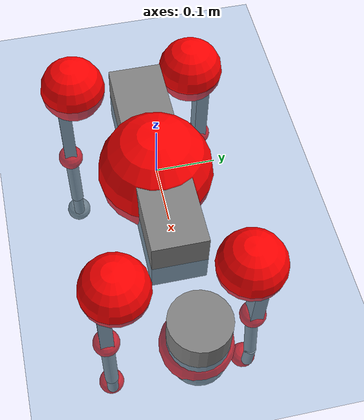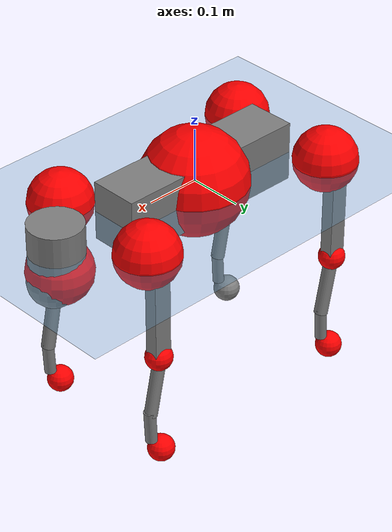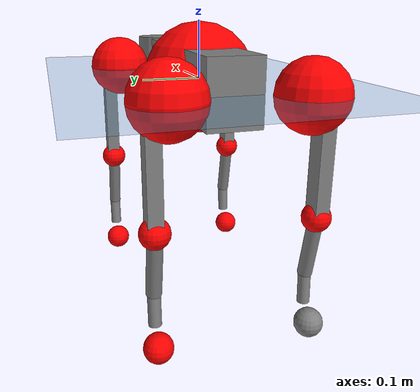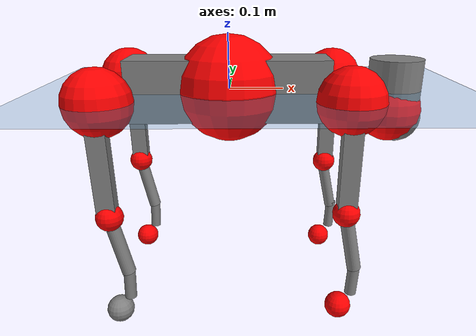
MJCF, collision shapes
<mujoco model="go2">
  <compiler angle="radian" assetdir="assets" balanceinertia="true" inertiafromgeom="false"/>

  <option timestep="0.005" density="1.2" viscosity="2e-05"/>

  <size nkey="1"/>

  <visual>
    <quality shadowsize="8192"/>
    <map shadowclip="0.5"/>
  </visual>

  <default>
    <default class="/">
      <geom contype="0" conaffinity="0" group="1" solref="-1000 -80"/>
      <site size="0.01 0.005 0.005" group="5"/>
      <general forcelimited="true" biastype="affine" gainprm="20" biasprm="0 -20 -0.5"/>
      <default class="go2">
        <joint armature="0.01" damping="0.01" frictionloss="0.2"/>
        <geom condim="1" margin="0.001"/>
        <default class="visual">
          <geom type="mesh" group="2"/>
        </default>
        <default class="collision">
          <geom group="3"/>
          <default class="foot">
            <geom size="0.022 0 0" condim="6" priority="1" friction="0.8 0.02 0.01" solimp="0.015 1 0.022"/>
          </default>
        </default>
        <default class="reward_collision_sphere">
          <geom group="5" rgba="1 0 0 1"/>
        </default>
      </default>
    </default>
  </default>

  <asset>
    <texture type="skybox" colorspace="auto" name="//unnamed_texture_0" builtin="gradient" rgb1="0.95 0.95 0.95" rgb2="0.95 0.95 0.95" width="100" height="600"/>
    <texture type="2d" colorspace="auto" name="texplane" builtin="checker" rgb1="0.345 0.575 0.748" rgb2="0.345 0.575 0.748" markrgb="1 1 1" width="512" height="512"/>
    <material name="MatPlane" class="/" texture="texplane" texuniform="true" texrepeat="2 2" specular="0.9"/>
    <material name="metal" class="/" rgba="0.9 0.95 0.95 1"/>
    <material name="black" class="/" rgba="0 0 0 1"/>
    <material name="white" class="/"/>
    <material name="gray" class="/" rgba="0.671705 0.692426 0.77427 1"/>
    <mesh name="base_0" class="/" file="base_0.obj"/>
    <mesh name="base_1" class="/" file="base_1.obj"/>
    <mesh name="base_2" class="/" file="base_2.obj"/>
    <mesh name="base_3" class="/" file="base_3.obj"/>
    <mesh name="base_4" class="/" file="base_4.obj"/>
    <mesh name="hip_0" class="/" file="hip_0.obj"/>
    <mesh name="hip_1" class="/" file="hip_1.obj"/>
    <mesh name="thigh_0" class="/" file="thigh_0.obj"/>
    <mesh name="thigh_1" class="/" file="thigh_1.obj"/>
    <mesh name="thigh_mirror_0" class="/" file="thigh_mirror_0.obj"/>
    <mesh name="thigh_mirror_1" class="/" file="thigh_mirror_1.obj"/>
    <mesh name="calf_0" class="/" file="calf_0.obj"/>
    <mesh name="calf_1" class="/" file="calf_1.obj"/>
    <mesh name="calf_mirror_0" class="/" file="calf_mirror_0.obj"/>
    <mesh name="calf_mirror_1" class="/" file="calf_mirror_1.obj"/>
    <mesh name="foot" class="/" file="foot.obj"/>
  </asset>

  <worldbody>
    <geom name="floor" class="/" size="100 100 0.125" type="plane" group="0" material="MatPlane"/>
    <light name="toplight_shadow" class="/" pos="0 0 5" dir="0.0990148 0.0990148 -0.990148" type="directional" ambient="0.04 0.04 0.04" diffuse="0.55 0.55 0.55" specular="0.12 0.12 0.12"/>
    <light name="toplight_fill" class="/" pos="0 0 5" dir="0.0990148 0.0990148 -0.990148" type="directional" castshadow="false" ambient="0.04 0.04 0.04" diffuse="0.3 0.3 0.3" specular="0.08 0.08 0.08"/>
    <body name="trunk" childclass="go2" pos="0.000173588 -0.000900032 0.00104849" quat="1 0.000416806 -0.000191294 -8.49393e-05">
      <inertial pos="0.0226701 -0.00251835 -0.00366864" quat="-0.000248085 0.713614 -0.00142806 0.700537" mass="6.35896" diaginertia="0.145121 0.0677494 0.0159191"/>
      <joint name="//unnamed_joint_0" type="free" armature="0" damping="0" frictionloss="0"/>
      <geom name="//unnamed_geom_1" class="visual" material="black" mesh="base_0"/>
      <geom name="//unnamed_geom_2" class="visual" material="black" mesh="base_1"/>
      <geom name="//unnamed_geom_3" class="visual" material="black" mesh="base_2"/>
      <geom name="//unnamed_geom_4" class="visual" material="white" mesh="base_3"/>
      <geom name="//unnamed_geom_5" class="visual" material="gray" mesh="base_4"/>
      <geom name="trunk_1" class="collision" size="0.183776 0.0456754 0.0556897" type="box"/>
      <geom name="trunk_2" class="collision" size="0.0488506 0.0439656" pos="0.306833 0 0.00919607" type="cylinder"/>
      <geom name="trunk_3" class="collision" size="0.0459196" pos="0.315446 0 -0.0551764"/>
      <geom name="//unnamed_geom_9" class="reward_collision_sphere" size="0.0977013"/>
      <geom name="//unnamed_geom_10" class="reward_collision_sphere" size="0.0586208" pos="0.30145 0 -0.0413823"/>
      <site name="imu" pos="-0.029213 0.00274206 0.0416479" size="0.00977013"/>
      <camera name="track" pos="0 -1.86965 0" quat="0.707107 0.707107 0 0" mode="trackcom"/>
      <camera name="ego_camera" pos="0.335902 0 0.0413823" quat="-0.5 -0.5 0.5 0.5"/>
      <body name="FL_hip" pos="0.208054 0.0444291 0.000586389" quat="1 -2.16749e-05 9.34073e-06 -3.55172e-05">
        <inertial pos="-0.00560054 0.000269537 0.000504019" quat="0.499296 0.507012 0.50543 0.488039" mass="0.627355" diaginertia="0.00125784 0.00042386 0.000310746"/>
        <joint name="FL_hip_joint" pos="0 0 0" axis="0.999991 0.00419379 -0.00103363" stiffness="0.0155338" range="-1.04664 1.05969" armature="0.00939117" damping="0.00918292" frictionloss="0.198747"/>
        <geom name="//unnamed_geom_11" class="visual" material="metal" mesh="hip_0"/>
        <geom name="//unnamed_geom_12" class="visual" material="gray" mesh="hip_1"/>
        <geom name="//unnamed_geom_13" class="collision" size="0.0449426 0.0195403" pos="0 0.0747859 0" quat="0.707107 0.707107 0 0" type="cylinder"/>
        <geom name="//unnamed_geom_14" class="reward_collision_sphere" size="0.0586208" pos="0 0.0654376 0"/>
        <body name="FL_thigh" pos="0.000545856 0.0889771 0.000309112" quat="0.999999 0.00123636 -0.00028029 -0.000427823">
          <inertial pos="-0.00482131 -0.0180998 -0.0302616" quat="0.828019 0.0823589 -0.0207839 0.554228" mass="1.06919" diaginertia="0.00833277 0.004285 0.000575479"/>
          <joint name="FL_thigh_joint" pos="0 0 0" axis="0.0091344 0.999935 -0.00683903" stiffness="0.00185389" range="-1.58759 3.44395" armature="0.0110334" damping="0.00545414" frictionloss="0.193863"/>
          <geom name="//unnamed_geom_15" class="visual" material="metal" mesh="thigh_0"/>
          <geom name="//unnamed_geom_16" class="visual" material="gray" mesh="thigh_1"/>
          <geom name="//unnamed_geom_17" class="collision" size="0.104052 0.0119684 0.0166092" pos="0 0 -0.0979382" quat="0.707107 0 0.707107 0" type="box"/>
          <body name="FL_calf" pos="-0.00144159 -0.0011557 -0.195285" quat="1 0.000329722 0.00024168 -9.09086e-05">
            <inertial pos="0.00464568 -0.0010044 -0.131209" quat="0.708333 0.00260104 -0.00773817 0.705831" mass="0.220508" diaginertia="0.0021379 0.00106766 3.45211e-05"/>
            <joint name="FL_calf_joint" pos="0 0 0" axis="-0.00638391 0.999974 0.0033612" stiffness="0.00767391" range="-2.67255 -0.801319" armature="0.00971887" damping="0" frictionloss="0.185554"/>
            <geom name="//unnamed_geom_18" class="visual" material="gray" mesh="calf_0"/>
            <geom name="//unnamed_geom_19" class="visual" material="black" mesh="calf_1"/>
            <geom name="FL_calf0" class="collision" size="0.0117242 0.0586208" pos="0.00861286 0 -0.0551764" quat="0.994493 0 -0.104807 0" type="cylinder"/>
            <geom name="//unnamed_geom_21" class="collision" size="0.0107471 0.0317529" pos="0.0215322 0 -0.136102" quat="0.999688 0 0.0249974 0" type="cylinder"/>
            <geom name="//unnamed_geom_22" class="visual" pos="0 0 -0.195876" quat="1 0 0 0" material="black" mesh="foot"/>
            <geom name="FL_foot" class="foot" size="0.0178891" pos="-0.00215322 0 -0.195876"/>
            <geom name="//unnamed_geom_24" class="reward_collision_sphere" size="0.0244253"/>
            <geom name="//unnamed_geom_25" class="reward_collision_sphere" size="0.0244253" pos="-0.00215322 0 -0.195876"/>
            <site name="FL_foot" class="foot" pos="-0.00215322 0 -0.195876" size="0.00977013"/>
          </body>
        </body>
      </body>
      <body name="FR_hip" pos="0.206012 -0.0427269 -0.00131491" quat="1 -5.94188e-05 8.58358e-05 0.000131943">
        <inertial pos="-0.00595147 -0.00262611 0.000765866" quat="0.49462 0.50071 0.497799 0.506792" mass="0.638695" diaginertia="0.00125903 0.000425126 0.000311576"/>
        <joint name="FR_hip_joint" pos="0 0 0" axis="1 0.000183809 -0.00018777" range="-1.04908 1.09077" armature="0.0100212" damping="0.0115555" frictionloss="0.185241"/>
        <geom name="//unnamed_geom_26" class="visual" pos="0 1.32555e-10 5.68554e-09" quat="4.63268e-05 1 0 0" material="metal" mesh="hip_0"/>
        <geom name="//unnamed_geom_27" class="visual" pos="0 2.14887e-10 -1.40625e-08" quat="4.63268e-05 1 0 0" material="gray" mesh="hip_1"/>
        <geom name="//unnamed_geom_28" class="collision" size="0.0449426 0.0195403" pos="0 -0.0747859 0" quat="0.707107 0.707107 0 0" type="cylinder"/>
        <geom name="//unnamed_geom_29" class="reward_collision_sphere" size="0.0586208" pos="0 -0.0654376 0"/>
        <body name="FR_thigh" pos="0.000751793 -0.0890464 -9.14531e-05" quat="1 -0.000140281 0.000188998 -0.000203622">
          <inertial pos="-0.00397047 0.0203091 -0.0275647" quat="0.550957 -0.0182695 0.0804754 0.830444" mass="1.05724" diaginertia="0.00848438 0.00415436 0.000575781"/>
          <joint name="FR_thigh_joint" pos="0 0 0" axis="0.00556403 -0.999983 0.00182755" stiffness="0.0116977" range="-3.49844 1.55021" armature="0.00874465" damping="0.0229747" frictionloss="0.190109"/>
          <geom name="//unnamed_geom_30" class="visual" material="metal" mesh="thigh_mirror_0"/>
          <geom name="//unnamed_geom_31" class="visual" material="gray" mesh="thigh_mirror_1"/>
          <geom name="//unnamed_geom_32" class="collision" size="0.104052 0.0119684 0.0166092" pos="0 0 -0.0979382" quat="0.707107 0 0.707107 0" type="box"/>
          <body name="FR_calf" pos="0.000427384 -4.85054e-05 -0.193006" quat="1 0.000132995 -0.0002018 0.00032065">
            <inertial pos="0.00616764 0.00161767 -0.130538" quat="0.701261 -0.00324506 0.00208418 0.712894" mass="0.232491" diaginertia="0.00224829 0.0010943 3.58714e-05"/>
            <joint name="FR_calf_joint" pos="0 0 0" axis="-0.00158042 -0.999975 0.00693959" range="0.81529 2.70222" armature="0.00991865" damping="0" frictionloss="0.204332"/>
            <geom name="//unnamed_geom_33" class="visual" material="gray" mesh="calf_mirror_0"/>
            <geom name="//unnamed_geom_34" class="visual" material="black" mesh="calf_mirror_1"/>
            <geom name="FR_calf0" class="collision" size="0.0127012 0.0586208" pos="0.0107661 0 -0.0551764" quat="0.995004 0 -0.0998334 0" type="cylinder"/>
            <geom name="//unnamed_geom_36" class="collision" size="0.0107471 0.0317529" pos="0.0215322 0 -0.136102" quat="0.999688 0 0.0249974 0" type="cylinder"/>
            <geom name="//unnamed_geom_37" class="visual" pos="0 0 -0.195876" quat="1 0 0 0" material="black" mesh="foot"/>
            <geom name="FR_foot" class="foot" size="0.0202001" pos="-0.00215322 0 -0.195876"/>
            <geom name="//unnamed_geom_39" class="reward_collision_sphere" size="0.0244253"/>
            <geom name="//unnamed_geom_40" class="reward_collision_sphere" size="0.0244253" pos="-0.00215322 0 -0.195876"/>
            <site name="FR_foot" class="foot" pos="-0.00215322 0 -0.195876" size="0.00977013"/>
          </body>
        </body>
      </body>
      <body name="RL_hip" pos="-0.208935 0.0431626 0.00204375" quat="1 -4.59449e-05 -0.000341438 0.000100793">
        <inertial pos="0.00508742 0.00269694 0.000801777" quat="0.504274 0.498099 0.494663 0.502905" mass="0.618066" diaginertia="0.00130259 0.000431218 0.000319781"/>
        <joint name="RL_hip_joint" pos="0 0 0" axis="-0.999852 -0.015228 0.00796649" stiffness="0.0112888" range="-1.00686 1.06439" armature="0.0101674" damping="0.0136903" frictionloss="0.210642"/>
        <geom name="//unnamed_geom_41" class="visual" pos="-1.36772e-09 0 -2.68105e-07" quat="4.63268e-05 0 1 0" material="metal" mesh="hip_0"/>
        <geom name="//unnamed_geom_42" class="visual" pos="-2.21724e-09 0 -2.37771e-07" quat="4.63268e-05 0 1 0" material="gray" mesh="hip_1"/>
        <geom name="//unnamed_geom_43" class="collision" size="0.0449426 0.0195403" pos="0 0.0747859 0" quat="0.707107 0.707107 0 0" type="cylinder"/>
        <geom name="//unnamed_geom_44" class="reward_collision_sphere" size="0.0586208" pos="0 0.0654376 0"/>
        <body name="RL_thigh" pos="-0.000136541 0.0896859 0.00139749" quat="0.999999 -0.000618184 0.000900929 0.000556827">
          <inertial pos="-0.00412265 -0.0180147 -0.030912" quat="0.825255 0.0851193 -0.0203526 0.557938" mass="1.04116" diaginertia="0.00860602 0.0041862 0.000594636"/>
          <joint name="RL_thigh_joint" pos="0 0 0" axis="0.00870177 0.999946 0.00560999" stiffness="0.00466641" range="-0.523892 4.53228" armature="0.0101678" damping="0.0177902" frictionloss="0.193959"/>
          <geom name="//unnamed_geom_45" class="visual" material="metal" mesh="thigh_0"/>
          <geom name="//unnamed_geom_46" class="visual" material="gray" mesh="thigh_1"/>
          <geom name="//unnamed_geom_47" class="collision" size="0.104052 0.0119684 0.0166092" pos="0 0 -0.0979382" quat="0.707107 0 0.707107 0" type="box"/>
          <body name="RL_calf" pos="-0.000953867 -0.000942184 -0.194349" quat="1 -7.4213e-05 4.50461e-05 1.56415e-05">
            <inertial pos="0.00702118 0.00151125 -0.130142" quat="0.709007 0.00290784 -0.0049759 0.705178" mass="0.226998" diaginertia="0.00211262 0.00102264 3.40835e-05"/>
            <joint name="RL_calf_joint" pos="0 0 0" axis="0.00451853 0.999883 -0.0145845" stiffness="0.0105899" range="-2.67049 -0.842827" armature="0.0110382" damping="0.00219755" frictionloss="0.18865"/>
            <geom name="//unnamed_geom_48" class="visual" material="gray" mesh="calf_0"/>
            <geom name="//unnamed_geom_49" class="visual" material="black" mesh="calf_1"/>
            <geom name="RL_calf0" class="collision" size="0.0127012 0.0586208" pos="0.0107661 0 -0.0551764" quat="0.995004 0 -0.0998334 0" type="cylinder"/>
            <geom name="//unnamed_geom_51" class="collision" size="0.0107471 0.0317529" pos="0.0215322 0 -0.136102" quat="0.999688 0 0.0249974 0" type="cylinder"/>
            <geom name="//unnamed_geom_52" class="visual" pos="0 0 -0.195876" quat="1 0 0 0" material="black" mesh="foot"/>
            <geom name="RL_foot" class="foot" size="0.0193377" pos="-0.00215322 0 -0.195876"/>
            <geom name="//unnamed_geom_54" class="reward_collision_sphere" size="0.0244253"/>
            <geom name="//unnamed_geom_55" class="reward_collision_sphere" size="0.0244253" pos="-0.00215322 0 -0.195876"/>
            <site name="RL_foot" class="foot" pos="-0.00215322 0 -0.195876" size="0.00977013"/>
          </body>
        </body>
      </body>
      <body name="RR_hip" pos="-0.210541 -0.0444951 -0.00208449" quat="0.999999 0.0010715 -0.000664003 0.000288692">
        <inertial pos="0.00621952 -0.000836216 -0.000407505" quat="0.49979 0.496544 0.497194 0.506411" mass="0.633829" diaginertia="0.00128257 0.00042105 0.000326832"/>
        <joint name="RR_hip_joint" pos="0 0 0" axis="-0.999998 0.000884226 -0.00161809" stiffness="0.00645396" range="-1.03442 1.06542" armature="0.0109159" damping="0.00766322" frictionloss="0.200389"/>
        <geom name="//unnamed_geom_56" class="visual" pos="1.36282e-09 1.32555e-10 -2.73791e-07" quat="2.14617e-09 4.63268e-05 4.63268e-05 -1" material="metal" mesh="hip_0"/>
        <geom name="//unnamed_geom_57" class="visual" pos="2.22938e-09 2.14887e-10 -2.23709e-07" quat="2.14617e-09 4.63268e-05 4.63268e-05 -1" material="gray" mesh="hip_1"/>
        <geom name="//unnamed_geom_58" class="collision" size="0.0449426 0.0195403" pos="0 -0.0747859 0" quat="0.707107 0.707107 0 0" type="cylinder"/>
        <geom name="//unnamed_geom_59" class="reward_collision_sphere" size="0.0586208" pos="0 -0.0654376 0"/>
        <body name="RR_thigh" pos="-0.000314262 -0.0882745 -0.000743691" quat="1 0.000522159 -5.53332e-05 -0.000183758">
          <inertial pos="-0.0038138 0.0195004 -0.0304357" quat="0.552512 -0.0204541 0.0850215 0.828905" mass="1.04841" diaginertia="0.00848365 0.00417819 0.000565723"/>
          <joint name="RR_thigh_joint" pos="0 0 0" axis="0.00256991 -0.999984 -0.00508332" stiffness="0.00593008" range="-4.5285 0.576705" armature="0.00853404" damping="0.0211148" frictionloss="0.190106"/>
          <geom name="//unnamed_geom_60" class="visual" material="metal" mesh="thigh_mirror_0"/>
          <geom name="//unnamed_geom_61" class="visual" material="gray" mesh="thigh_mirror_1"/>
          <geom name="//unnamed_geom_62" class="collision" size="0.104052 0.0119684 0.0166092" pos="0 0 -0.0979382" quat="0.707107 0 0.707107 0" type="box"/>
          <body name="RR_calf" pos="0.00218368 -0.000502433 -0.197071" quat="1 -1.83326e-05 -3.51824e-06 6.4073e-05">
            <inertial pos="0.00657947 0.000857339 -0.13033" quat="0.703821 -0.00473549 0.00192895 0.710359" mass="0.228151" diaginertia="0.00213213 0.00104357 3.48672e-05"/>
            <joint name="RR_calf_joint" pos="0 0 0" axis="0.00200872 -0.999998 6.618e-05" range="0.881473 2.71995" armature="0.00951975" damping="0.0136208" frictionloss="0.19627"/>
            <geom name="//unnamed_geom_63" class="visual" material="gray" mesh="calf_mirror_0"/>
            <geom name="//unnamed_geom_64" class="visual" material="black" mesh="calf_mirror_1"/>
            <geom name="RR_calf0" class="collision" size="0.0127012 0.0586208" pos="0.0107661 0 -0.0551764" quat="0.995004 0 -0.0998334 0" type="cylinder"/>
            <geom name="//unnamed_geom_66" class="collision" size="0.0107471 0.0317529" pos="0.0215322 0 -0.136102" quat="0.999688 0 0.0249974 0" type="cylinder"/>
            <geom name="//unnamed_geom_67" class="visual" pos="0 0 -0.195876" quat="1 0 0 0" material="black" mesh="foot"/>
            <geom name="RR_foot" class="foot" size="0.0249725" pos="-0.00215322 0 -0.195876"/>
            <geom name="//unnamed_geom_69" class="reward_collision_sphere" size="0.0244253"/>
            <geom name="//unnamed_geom_70" class="reward_collision_sphere" size="0.0244253" pos="-0.00215322 0 -0.195876"/>
            <site name="RR_foot" class="foot" pos="-0.00215322 0 -0.195876" size="0.00977013"/>
          </body>
        </body>
      </body>
    </body>
  </worldbody>

  <contact>
    <pair class="/" geom1="floor" geom2="FL_foot" name="//unnamed_contact_0"/>
    <pair class="/" geom1="floor" geom2="FR_foot" name="//unnamed_contact_1"/>
    <pair class="/" geom1="floor" geom2="RL_foot" name="//unnamed_contact_2"/>
    <pair class="/" geom1="floor" geom2="RR_foot" name="//unnamed_contact_3"/>
  </contact>

  <actuator>
    <general name="FL_hip" class="/" joint="FL_hip_joint" forcerange="-22.7414 22.7414" gainprm="19.7435" biasprm="0 -19.7435 -0.495098"/>
    <general name="FL_thigh" class="/" joint="FL_thigh_joint" forcerange="-23.472 23.472" gainprm="19.7435" biasprm="0 -19.7435 -0.495098"/>
    <general name="FL_calf" class="/" joint="FL_calf_joint" forcerange="-45.1695 45.1695" gainprm="19.7435" biasprm="0 -19.7435 -0.495098"/>
    <general name="FR_hip" class="/" joint="FR_hip_joint" forcerange="-23.2468 23.2468" gainprm="19.7435" biasprm="0 -19.7435 -0.495098"/>
    <general name="FR_thigh" class="/" joint="FR_thigh_joint" forcerange="-22.7561 22.7561" gainprm="19.7435" biasprm="0 -19.7435 -0.495098"/>
    <general name="FR_calf" class="/" joint="FR_calf_joint" forcerange="-41.8341 41.8341" gainprm="19.7435" biasprm="0 -19.7435 -0.495098"/>
    <general name="RL_hip" class="/" joint="RL_hip_joint" forcerange="-24.0356 24.0356" gainprm="19.7435" biasprm="0 -19.7435 -0.495098"/>
    <general name="RL_thigh" class="/" joint="RL_thigh_joint" forcerange="-23.1282 23.1282" gainprm="19.7435" biasprm="0 -19.7435 -0.495098"/>
    <general name="RL_calf" class="/" joint="RL_calf_joint" forcerange="-42.4596 42.4596" gainprm="19.7435" biasprm="0 -19.7435 -0.495098"/>
    <general name="RR_hip" class="/" joint="RR_hip_joint" forcerange="-23.4171 23.4171" gainprm="19.7435" biasprm="0 -19.7435 -0.495098"/>
    <general name="RR_thigh" class="/" joint="RR_thigh_joint" forcerange="-22.3742 22.3742" gainprm="19.7435" biasprm="0 -19.7435 -0.495098"/>
    <general name="RR_calf" class="/" joint="RR_calf_joint" forcerange="-48.3618 48.3618" gainprm="19.7435" biasprm="0 -19.7435 -0.495098"/>
  </actuator>

  <sensor>
    <gyro site="imu" name="imu_angular_velocity"/>
    <velocimeter site="imu" name="imu_linear_velocity"/>
    <framelinvel objtype="site" objname="FL_foot" name="FL_foot_global_linear_velocity"/>
    <framelinvel objtype="site" objname="FR_foot" name="FR_foot_global_linear_velocity"/>
    <framelinvel objtype="site" objname="RL_foot" name="RL_foot_global_linear_velocity"/>
    <framelinvel objtype="site" objname="RR_foot" name="RR_foot_global_linear_velocity"/>
  </sensor>

  <keyframe>
    <key name="home" qpos="0 0 0.325 1 0 0 0 0.1 0.8 -1.5 -0.1 -0.8 1.5 -0.1 0.8 -1.5 0.1 -0.8 1.5"/>
  </keyframe>
</mujoco>
